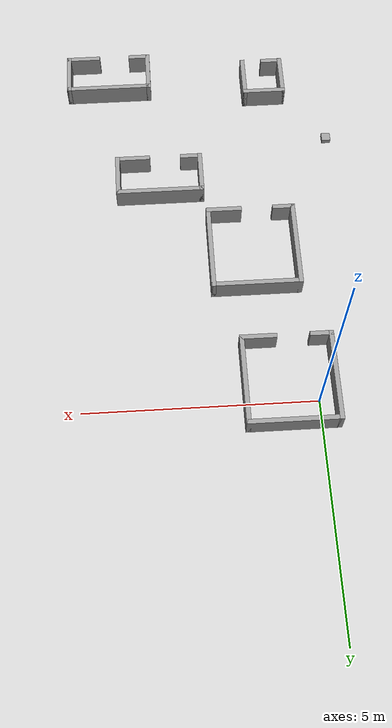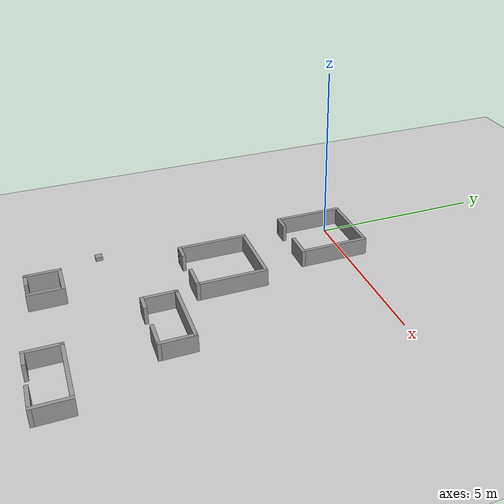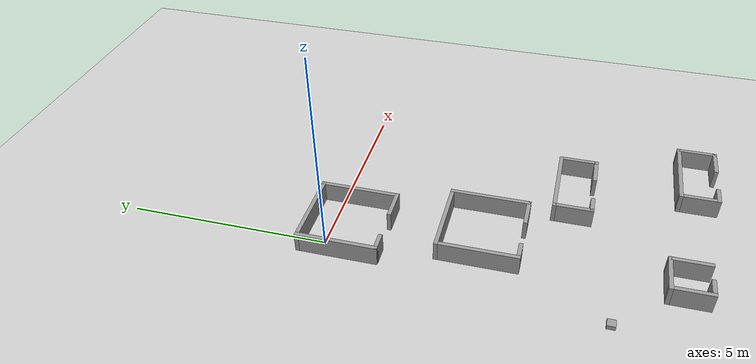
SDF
<sdf version="1.6">
 <world name="default">
  <model name="ground_plane">
   <static>1</static>
   <link name="link">
    <collision name="collision">
     <geometry><plane><normal>0 0 1</normal><size>20 20</size></plane></geometry>
     <surface>
      <contact><collide_bitmask>65535</collide_bitmask></contact>
      <friction><ode><mu>100</mu><mu2>50</mu2></ode></friction>
     </surface>
    </collision>
    <visual name="visual">
     <cast_shadows>0</cast_shadows>
     <geometry><plane><normal>0 0 1</normal><size>20 20</size></plane></geometry>
     <material>
      <script><uri>file://media/materials/scripts/gazebo.material</uri><name>Gazebo/Grey</name></script>
     </material>
    </visual>
   </link>
  </model>
  <model name="shape1">
   <pose>3.1 -5.6 0 0 -0 0</pose>
   <link name="Wall_0">
    <collision name="Wall_0_Collision">
     <geometry><box><size>2 0.1 0.5</size></box></geometry>
     <pose>0 0 0.25 0 -0 0</pose>
    </collision>
    <visual name="Wall_0_Visual">
     <pose>0 0 0.25 0 -0 0</pose>
     <geometry><box><size>2 0.1 0.5</size></box></geometry>
     <material>
      <script><uri>file://media/materials/scripts/gazebo.material</uri><name>Gazebo/Grey</name></script>
      <ambient>1 1 1 1</ambient>
     </material>
     <meta><layer>0</layer></meta>
    </visual>
    <pose>0 0.45 0 0 -0 0</pose>
   </link>
   <link name="Wall_1">
    <collision name="Wall_1_Collision">
     <geometry><box><size>1 0.1 0.5</size></box></geometry>
     <pose>0 0 0.25 0 -0 0</pose>
    </collision>
    <visual name="Wall_1_Visual">
     <pose>0 0 0.25 0 -0 0</pose>
     <geometry><box><size>1 0.1 0.5</size></box></geometry>
     <material>
      <script><uri>file://media/materials/scripts/gazebo.material</uri><name>Gazebo/Grey</name></script>
      <ambient>1 1 1 1</ambient>
     </material>
     <meta><layer>0</layer></meta>
    </visual>
    <pose>0.95 -0 0 0 -0 -1.5708</pose>
   </link>
   <link name="Wall_2">
    <collision name="Wall_2_Collision">
     <geometry><box><size>0.8 0.1 0.5</size></box></geometry>
     <pose>0 0 0.25 0 -0 0</pose>
    </collision>
    <visual name="Wall_2_Visual">
     <pose>0 0 0.25 0 -0 0</pose>
     <geometry><box><size>0.8 0.1 0.5</size></box></geometry>
     <material>
      <script><uri>file://media/materials/scripts/gazebo.material</uri><name>Gazebo/Grey</name></script>
      <ambient>1 1 1 1</ambient>
     </material>
     <meta><layer>0</layer></meta>
    </visual>
    <pose>0.6 -0.45 0 0 -0 3.14159</pose>
   </link>
   <link name="Wall_4">
    <collision name="Wall_4_Collision">
     <geometry><box><size>1 0.1 0.5</size></box></geometry>
     <pose>0 0 0.25 0 -0 0</pose>
    </collision>
    <visual name="Wall_4_Visual">
     <pose>0 0 0.25 0 -0 0</pose>
     <geometry><box><size>1 0.1 0.5</size></box></geometry>
     <material>
      <script><uri>file://media/materials/scripts/gazebo.material</uri><name>Gazebo/Grey</name></script>
      <ambient>1 1 1 1</ambient>
     </material>
     <meta><layer>0</layer></meta>
    </visual>
    <pose>-0.95 -0 0 0 -0 -1.5708</pose>
   </link>
   <link name="Wall_5">
    <collision name="Wall_5_Collision">
     <geometry><box><size>0.499474 0.1 0.5</size></box></geometry>
     <pose>0 0 0.25 0 -0 0</pose>
    </collision>
    <visual name="Wall_5_Visual">
     <pose>0 0 0.25 0 -0 0</pose>
     <geometry><box><size>0.499474 0.1 0.5</size></box></geometry>
     <material>
      <script><uri>file://media/materials/scripts/gazebo.material</uri><name>Gazebo/Grey</name></script>
      <ambient>1 1 1 1</ambient>
     </material>
     <meta><layer>0</layer></meta>
    </visual>
    <pose>-0.75 -0.45 0 0 -0 0</pose>
   </link>
   <static>1</static>
  </model>
  <model name="box_d=20">
   <link name="link_2">
    <inertial>
     <mass>1</mass>
     <inertia>
      <ixx>0.166667</ixx>
      <ixy>0</ixy>
      <ixz>0</ixz>
      <iyy>0.166667</iyy>
      <iyz>0</iyz>
      <izz>0.166667</izz>
     </inertia>
    </inertial>
    <pose>-0.9 -6.7 0 0 -0 0</pose>
    <visual name="visual">
     <geometry><box><size>0.2 0.2 0.2</size></box></geometry>
     <material>
      <lighting>1</lighting>
      <script><uri>file://media/materials/scripts/gazebo.material</uri><name>Gazebo/Grey</name></script>
      <shader type="vertex"><normal_map>__default__</normal_map></shader>
      <ambient>0.3 0.3 0.3 1</ambient>
      <diffuse>0.7 0.7 0.7 1</diffuse>
      <specular>0.01 0.01 0.01 1</specular>
      <emissive>0 0 0 1</emissive>
     </material>
    </visual>
    <collision name="collision">
     <geometry><box><size>0.2 0.2 0.2</size></box></geometry>
     <surface>
      <friction>
       <ode><mu>1</mu><mu2>1</mu2><fdir1>0 0 0</fdir1><slip1>0</slip1><slip2>0</slip2></ode>
       <torsional>
        <coefficient>1</coefficient>
        <patch_radius>0</patch_radius>
        <surface_radius>0</surface_radius>
        <use_patch_radius>1</use_patch_radius>
        <ode><slip>0</slip></ode>
       </torsional>
      </friction>
      <bounce><restitution_coefficient>0</restitution_coefficient><threshold>1e+06</threshold></bounce>
      <contact>
       <collide_without_contact>0</collide_without_contact>
       <collide_without_contact_bitmask>1</collide_without_contact_bitmask>
       <collide_bitmask>1</collide_bitmask>
       <ode>
        <soft_cfm>0</soft_cfm>
        <soft_erp>0.2</soft_erp>
        <kp>1e+13</kp>
        <kd>1</kd>
        <max_vel>0.01</max_vel>
        <min_depth>0</min_depth>
       </ode>
       <bullet>
        <split_impulse>1</split_impulse>
        <split_impulse_penetration_threshold>-0.01</split_impulse_penetration_threshold>
        <soft_cfm>0</soft_cfm>
        <soft_erp>0.2</soft_erp>
        <kp>1e+13</kp>
        <kd>1</kd>
       </bullet>
      </contact>
     </surface>
    </collision>
   </link>
   <static>0</static>
  </model>
  <model name="shape1">
   <pose>4.2 -8.6 0 0 -0 0</pose>
   <link name="Wall_0">
    <collision name="Wall_0_Collision">
     <geometry><box><size>2 0.1 0.5</size></box></geometry>
     <pose>0 0 0.25 0 -0 0</pose>
    </collision>
    <visual name="Wall_0_Visual">
     <pose>0 0 0.25 0 -0 0</pose>
     <geometry><box><size>2 0.1 0.5</size></box></geometry>
     <material>
      <script><uri>file://media/materials/scripts/gazebo.material</uri><name>Gazebo/Grey</name></script>
      <ambient>1 1 1 1</ambient>
     </material>
     <meta><layer>0</layer></meta>
    </visual>
    <pose>0 0.45 0 0 -0 0</pose>
   </link>
   <link name="Wall_1">
    <collision name="Wall_1_Collision">
     <geometry><box><size>1 0.1 0.5</size></box></geometry>
     <pose>0 0 0.25 0 -0 0</pose>
    </collision>
    <visual name="Wall_1_Visual">
     <pose>0 0 0.25 0 -0 0</pose>
     <geometry><box><size>1 0.1 0.5</size></box></geometry>
     <material>
      <script><uri>file://media/materials/scripts/gazebo.material</uri><name>Gazebo/Grey</name></script>
      <ambient>1 1 1 1</ambient>
     </material>
     <meta><layer>0</layer></meta>
    </visual>
    <pose>0.95 -0 0 0 -0 -1.5708</pose>
   </link>
   <link name="Wall_2">
    <collision name="Wall_2_Collision">
     <geometry><box><size>0.8 0.1 0.5</size></box></geometry>
     <pose>0 0 0.25 0 -0 0</pose>
    </collision>
    <visual name="Wall_2_Visual">
     <pose>0 0 0.25 0 -0 0</pose>
     <geometry><box><size>0.8 0.1 0.5</size></box></geometry>
     <material>
      <script><uri>file://media/materials/scripts/gazebo.material</uri><name>Gazebo/Grey</name></script>
      <ambient>1 1 1 1</ambient>
     </material>
     <meta><layer>0</layer></meta>
    </visual>
    <pose>0.6 -0.45 0 0 -0 3.14159</pose>
   </link>
   <link name="Wall_4">
    <collision name="Wall_4_Collision">
     <geometry><box><size>1 0.1 0.5</size></box></geometry>
     <pose>0 0 0.25 0 -0 0</pose>
    </collision>
    <visual name="Wall_4_Visual">
     <pose>0 0 0.25 0 -0 0</pose>
     <geometry><box><size>1 0.1 0.5</size></box></geometry>
     <material>
      <script><uri>file://media/materials/scripts/gazebo.material</uri><name>Gazebo/Grey</name></script>
      <ambient>1 1 1 1</ambient>
     </material>
     <meta><layer>0</layer></meta>
    </visual>
    <pose>-0.95 -0 0 0 -0 -1.5708</pose>
   </link>
   <link name="Wall_5">
    <collision name="Wall_5_Collision">
     <geometry><box><size>0.499474 0.1 0.5</size></box></geometry>
     <pose>0 0 0.25 0 -0 0</pose>
    </collision>
    <visual name="Wall_5_Visual">
     <pose>0 0 0.25 0 -0 0</pose>
     <geometry><box><size>0.499474 0.1 0.5</size></box></geometry>
     <material>
      <script><uri>file://media/materials/scripts/gazebo.material</uri><name>Gazebo/Grey</name></script>
      <ambient>1 1 1 1</ambient>
     </material>
     <meta><layer>0</layer></meta>
    </visual>
    <pose>-0.75 -0.45 0 0 -0 0</pose>
   </link>
   <static>1</static>
  </model>
  <model name="shape4">
   <pose>0.5 -8.3 0 0 -0 0</pose>
   <link name="Wall_14">
    <collision name="Wall_14_Collision">
     <geometry><box><size>1 0.1 0.5</size></box></geometry>
     <pose>0 0 0.25 0 -0 0</pose>
    </collision>
    <visual name="Wall_14_Visual">
     <pose>0 0 0.25 0 -0 0</pose>
     <geometry><box><size>1 0.1 0.5</size></box></geometry>
     <material>
      <script><uri>file://media/materials/scripts/gazebo.material</uri><name>Gazebo/Grey</name></script>
      <ambient>1 1 1 1</ambient>
     </material>
     <meta><layer>0</layer></meta>
    </visual>
    <pose>-0 0.45 0 0 -0 0</pose>
   </link>
   <link name="Wall_15">
    <collision name="Wall_15_Collision">
     <geometry><box><size>1 0.1 0.5</size></box></geometry>
     <pose>0 0 0.25 0 -0 0</pose>
    </collision>
    <visual name="Wall_15_Visual">
     <pose>0 0 0.25 0 -0 0</pose>
     <geometry><box><size>1 0.1 0.5</size></box></geometry>
     <material>
      <script><uri>file://media/materials/scripts/gazebo.material</uri><name>Gazebo/Grey</name></script>
      <ambient>1 1 1 1</ambient>
     </material>
     <meta><layer>0</layer></meta>
    </visual>
    <pose>0.45 -0 0 0 -0 -1.5708</pose>
   </link>
   <link name="Wall_17">
    <collision name="Wall_17_Collision">
     <geometry><box><size>1 0.1 0.5</size></box></geometry>
     <pose>0 0 0.25 0 -0 0</pose>
    </collision>
    <visual name="Wall_17_Visual">
     <pose>0 0 0.25 0 -0 0</pose>
     <geometry><box><size>1 0.1 0.5</size></box></geometry>
     <material>
      <script><uri>file://media/materials/scripts/gazebo.material</uri><name>Gazebo/Grey</name></script>
      <ambient>1 1 1 1</ambient>
     </material>
     <meta><layer>0</layer></meta>
    </visual>
    <pose>-0.45 -0 0 0 -0 -1.5708</pose>
   </link>
   <link name="Wall_18">
    <collision name="Wall_18_Collision">
     <geometry><box><size>0.5 0.1 0.5</size></box></geometry>
     <pose>0 0 0.25 0 -0 0</pose>
    </collision>
    <visual name="Wall_18_Visual">
     <pose>0 0 0.25 0 -0 0</pose>
     <geometry><box><size>0.5 0.1 0.5</size></box></geometry>
     <material>
      <script><uri>file://media/materials/scripts/gazebo.material</uri><name>Gazebo/Grey</name></script>
      <ambient>1 1 1 1</ambient>
     </material>
     <meta><layer>0</layer></meta>
    </visual>
    <pose>-0.25 -0.45 0 0 -0 0</pose>
   </link>
   <static>1</static>
  </model>
  <model name="shape5">
   <pose>0.6 -0.4 0 0 -0 0</pose>
   <link name="Wall_20">
    <collision name="Wall_20_Collision">
     <geometry><box><size>2 0.1 0.5</size></box></geometry>
     <pose>0 0 0.25 0 -0 0</pose>
    </collision>
    <visual name="Wall_20_Visual">
     <pose>0 0 0.25 0 -0 0</pose>
     <geometry><box><size>2 0.1 0.5</size></box></geometry>
     <material>
      <script><uri>file://media/materials/scripts/gazebo.material</uri><name>Gazebo/Grey</name></script>
      <ambient>1 1 1 1</ambient>
     </material>
     <meta><layer>0</layer></meta>
    </visual>
    <pose>-0 0.95 0 0 -0 0</pose>
   </link>
   <link name="Wall_21">
    <collision name="Wall_21_Collision">
     <geometry><box><size>2 0.1 0.5</size></box></geometry>
     <pose>0 0 0.25 0 -0 0</pose>
    </collision>
    <visual name="Wall_21_Visual">
     <pose>0 0 0.25 0 -0 0</pose>
     <geometry><box><size>2 0.1 0.5</size></box></geometry>
     <material>
      <script><uri>file://media/materials/scripts/gazebo.material</uri><name>Gazebo/Grey</name></script>
      <ambient>1 1 1 1</ambient>
     </material>
     <meta><layer>0</layer></meta>
    </visual>
    <pose>0.95 0 0 0 -0 -1.5708</pose>
   </link>
   <link name="Wall_22">
    <collision name="Wall_22_Collision">
     <geometry><box><size>0.8 0.1 0.5</size></box></geometry>
     <pose>0 0 0.25 0 -0 0</pose>
    </collision>
    <visual name="Wall_22_Visual">
     <pose>0 0 0.25 0 -0 0</pose>
     <geometry><box><size>0.8 0.1 0.5</size></box></geometry>
     <material>
      <script><uri>file://media/materials/scripts/gazebo.material</uri><name>Gazebo/Grey</name></script>
      <ambient>1 1 1 1</ambient>
     </material>
     <meta><layer>0</layer></meta>
    </visual>
    <pose>0.6 -0.95 0 0 -0 3.14159</pose>
   </link>
   <link name="Wall_24">
    <collision name="Wall_24_Collision">
     <geometry><box><size>2 0.1 0.5</size></box></geometry>
     <pose>0 0 0.25 0 -0 0</pose>
    </collision>
    <visual name="Wall_24_Visual">
     <pose>0 0 0.25 0 -0 0</pose>
     <geometry><box><size>2 0.1 0.5</size></box></geometry>
     <material>
      <script><uri>file://media/materials/scripts/gazebo.material</uri><name>Gazebo/Grey</name></script>
      <ambient>1 1 1 1</ambient>
     </material>
     <meta><layer>0</layer></meta>
    </visual>
    <pose>-0.95 0 0 0 -0 -1.5708</pose>
   </link>
   <link name="Wall_25">
    <collision name="Wall_25_Collision">
     <geometry><box><size>0.5 0.1 0.5</size></box></geometry>
     <pose>0 0 0.25 0 -0 0</pose>
    </collision>
    <visual name="Wall_25_Visual">
     <pose>0 0 0.25 0 -0 0</pose>
     <geometry><box><size>0.5 0.1 0.5</size></box></geometry>
     <material>
      <script><uri>file://media/materials/scripts/gazebo.material</uri><name>Gazebo/Grey</name></script>
      <ambient>1 1 1 1</ambient>
     </material>
     <meta><layer>0</layer></meta>
    </visual>
    <pose>-0.75 -0.95 0 0 -0 0</pose>
   </link>
   <static>1</static>
  </model>
  <model name="shape5">
   <pose>1.1 -3.6 0 0 -0 0</pose>
   <link name="Wall_20">
    <collision name="Wall_20_Collision">
     <geometry><box><size>2 0.1 0.5</size></box></geometry>
     <pose>0 0 0.25 0 -0 0</pose>
    </collision>
    <visual name="Wall_20_Visual">
     <pose>0 0 0.25 0 -0 0</pose>
     <geometry><box><size>2 0.1 0.5</size></box></geometry>
     <material>
      <script><uri>file://media/materials/scripts/gazebo.material</uri><name>Gazebo/Grey</name></script>
      <ambient>1 1 1 1</ambient>
     </material>
     <meta><layer>0</layer></meta>
    </visual>
    <pose>-0 0.95 0 0 -0 0</pose>
   </link>
   <link name="Wall_21">
    <collision name="Wall_21_Collision">
     <geometry><box><size>2 0.1 0.5</size></box></geometry>
     <pose>0 0 0.25 0 -0 0</pose>
    </collision>
    <visual name="Wall_21_Visual">
     <pose>0 0 0.25 0 -0 0</pose>
     <geometry><box><size>2 0.1 0.5</size></box></geometry>
     <material>
      <script><uri>file://media/materials/scripts/gazebo.material</uri><name>Gazebo/Grey</name></script>
      <ambient>1 1 1 1</ambient>
     </material>
     <meta><layer>0</layer></meta>
    </visual>
    <pose>0.95 0 0 0 -0 -1.5708</pose>
   </link>
   <link name="Wall_22">
    <collision name="Wall_22_Collision">
     <geometry><box><size>0.8 0.1 0.5</size></box></geometry>
     <pose>0 0 0.25 0 -0 0</pose>
    </collision>
    <visual name="Wall_22_Visual">
     <pose>0 0 0.25 0 -0 0</pose>
     <geometry><box><size>0.8 0.1 0.5</size></box></geometry>
     <material>
      <script><uri>file://media/materials/scripts/gazebo.material</uri><name>Gazebo/Grey</name></script>
      <ambient>1 1 1 1</ambient>
     </material>
     <meta><layer>0</layer></meta>
    </visual>
    <pose>0.6 -0.95 0 0 -0 3.14159</pose>
   </link>
   <link name="Wall_24">
    <collision name="Wall_24_Collision">
     <geometry><box><size>2 0.1 0.5</size></box></geometry>
     <pose>0 0 0.25 0 -0 0</pose>
    </collision>
    <visual name="Wall_24_Visual">
     <pose>0 0 0.25 0 -0 0</pose>
     <geometry><box><size>2 0.1 0.5</size></box></geometry>
     <material>
      <script><uri>file://media/materials/scripts/gazebo.material</uri><name>Gazebo/Grey</name></script>
      <ambient>1 1 1 1</ambient>
     </material>
     <meta><layer>0</layer></meta>
    </visual>
    <pose>-0.95 0 0 0 -0 -1.5708</pose>
   </link>
   <link name="Wall_25">
    <collision name="Wall_25_Collision">
     <geometry><box><size>0.5 0.1 0.5</size></box></geometry>
     <pose>0 0 0.25 0 -0 0</pose>
    </collision>
    <visual name="Wall_25_Visual">
     <pose>0 0 0.25 0 -0 0</pose>
     <geometry><box><size>0.5 0.1 0.5</size></box></geometry>
     <material>
      <script><uri>file://media/materials/scripts/gazebo.material</uri><name>Gazebo/Grey</name></script>
      <ambient>1 1 1 1</ambient>
     </material>
     <meta><layer>0</layer></meta>
    </visual>
    <pose>-0.75 -0.95 0 0 -0 0</pose>
   </link>
   <static>1</static>
  </model>
 </world>
</sdf>
